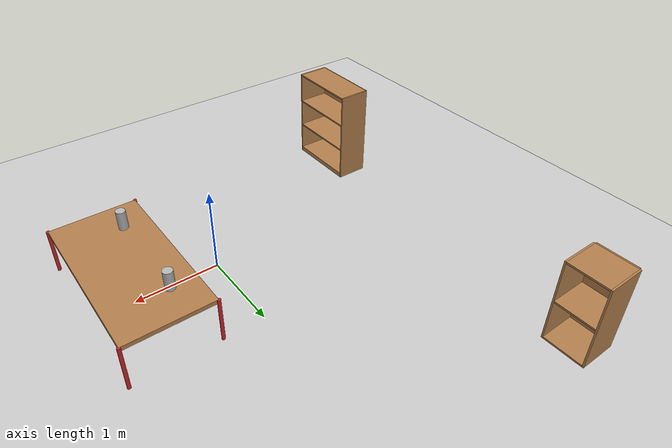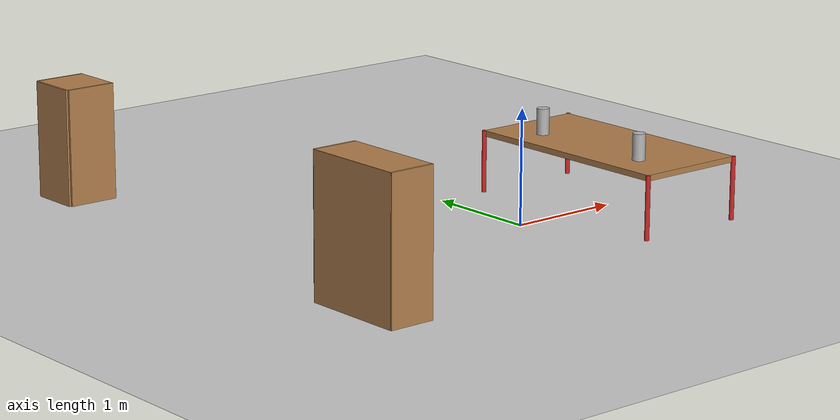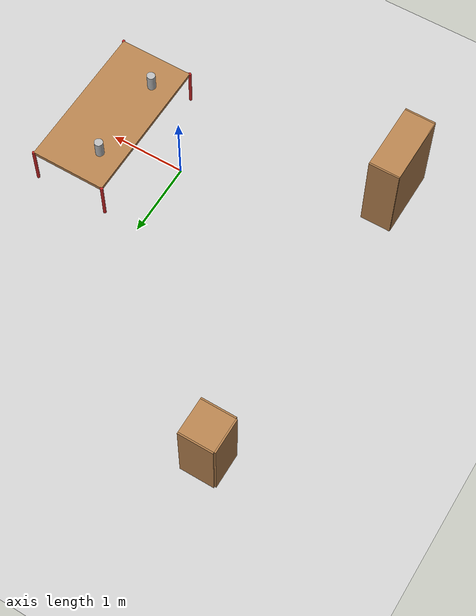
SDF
<sdf version="1.3">
 <world name="default">
  <light name="sun" type="directional">
   <pose>0.000000 0.000000 10.000000 0.000000 0.000000 0.000000</pose>
   <diffuse>0.800000 0.800000 0.800000 1.000000</diffuse>
   <specular>0.100000 0.100000 0.100000 1.000000</specular>
   <attenuation>
    <range>1000.000000</range>
    <constant>0.900000</constant>
    <linear>0.010000</linear>
    <quadratic>0.001000</quadratic>
   </attenuation>
   <direction>-0.500000 0.500000 -1.000000</direction>
  </light>
  <model name="ground_plane">
   <static>1</static>
   <link name="link">
    <collision name="collision">
     <geometry>
      <plane><normal>0.000000 0.000000 1.000000</normal><size>100.000000 100.000000</size></plane>
     </geometry>
     <surface><friction><ode><mu>100.000000</mu><mu2>50.000000</mu2></ode></friction></surface>
    </collision>
    <visual name="visual">
     <cast_shadows>0</cast_shadows>
     <geometry>
      <plane><normal>0.000000 0.000000 1.000000</normal><size>100.000000 100.000000</size></plane>
     </geometry>
     <material>
      <script><uri>file://media/materials/scripts/gazebo.material</uri><name>Gazebo/Grey</name></script>
     </material>
    </visual>
    <velocity_decay><linear>0.000000</linear><angular>0.000000</angular></velocity_decay>
   </link>
  </model>
  <physics type="ode">
   <update_rate>1000.000000</update_rate>
   <gravity>0.000000 0.000000 -9.800000</gravity>
  </physics>
  <scene>
   <ambient>0.200000 0.200000 0.200000 1.000000</ambient>
   <background>0.700000 0.700000 0.700000 1.000000</background>
   <shadows>1</shadows>
  </scene>
  <model name="table_1">
   <link name="table_top_link">
    <inertial>
     <pose>0.980000 0.000000 0.325000 0.000000 0.000000 0.000000</pose>
     <mass>5.000000</mass>
     <inertia>
      <ixx>5.400000</ixx>
      <ixy>0.000000</ixy>
      <ixz>-1.078000</ixz>
      <iyy>6.241600</iyy>
      <iyz>0.000000</iyz>
      <izz>9.881600</izz>
     </inertia>
    </inertial>
    <collision name="table_top_link_geom">
     <pose>0.980000 0.000000 0.525000 0.000000 0.000000 0.000000</pose>
     <geometry><box><size>1.000000 2.000000 0.050000</size></box></geometry>
     <surface>
      <contact><ode><kp>1000000.000000</kp><kd>1.000000</kd></ode></contact>
      <friction><ode><mu>50.000000</mu><mu2>50.000000</mu2></ode></friction>
     </surface>
    </collision>
    <collision name="table_top_link_geom_leg1_link">
     <pose>1.480000 1.000000 0.275000 0.000000 0.000000 0.000000</pose>
     <geometry><cylinder><length>0.550000</length><radius>0.020000</radius></cylinder></geometry>
     <surface>
      <contact><ode><kp>10000000.000000</kp><kd>1.000000</kd></ode></contact>
      <friction><ode><mu>1000.000000</mu><mu2>1000.000000</mu2></ode></friction>
     </surface>
    </collision>
    <collision name="table_top_link_geom_leg2_link">
     <pose>0.480000 1.000000 0.275000 0.000000 0.000000 0.000000</pose>
     <geometry><cylinder><length>0.550000</length><radius>0.020000</radius></cylinder></geometry>
     <surface>
      <contact><ode><kp>10000000.000000</kp><kd>1.000000</kd></ode></contact>
      <friction><ode><mu>1000.000000</mu><mu2>1000.000000</mu2></ode></friction>
     </surface>
    </collision>
    <collision name="table_top_link_geom_leg3_link">
     <pose>1.480000 -1.000000 0.275000 0.000000 0.000000 0.000000</pose>
     <geometry><cylinder><length>0.550000</length><radius>0.020000</radius></cylinder></geometry>
     <surface>
      <contact><ode><kp>10000000.000000</kp><kd>1.000000</kd></ode></contact>
      <friction><ode><mu>1000.000000</mu><mu2>1000.000000</mu2></ode></friction>
     </surface>
    </collision>
    <collision name="table_top_link_geom_leg4_link">
     <pose>0.480000 -1.000000 0.275000 0.000000 0.000000 0.000000</pose>
     <geometry><cylinder><length>0.550000</length><radius>0.020000</radius></cylinder></geometry>
     <surface>
      <contact><ode><kp>10000000.000000</kp><kd>1.000000</kd></ode></contact>
      <friction><ode><mu>1000.000000</mu><mu2>1000.000000</mu2></ode></friction>
     </surface>
    </collision>
    <visual name="table_top_link_visual">
     <pose>0.980000 0.000000 0.525000 0.000000 0.000000 0.000000</pose>
     <geometry><box><size>1.000000 2.000000 0.050000</size></box></geometry>
     <material><script><name>Gazebo/Wood</name><uri>__default__</uri></script></material>
    </visual>
    <visual name="table_top_link_visualleg1_link">
     <pose>1.480000 1.000000 0.275000 0.000000 0.000000 0.000000</pose>
     <geometry><cylinder><length>0.550000</length><radius>0.020000</radius></cylinder></geometry>
     <material><script><name>Gazebo/Red</name><uri>__default__</uri></script></material>
    </visual>
    <visual name="table_top_link_visualleg2_link">
     <pose>0.480000 1.000000 0.275000 0.000000 0.000000 0.000000</pose>
     <geometry><cylinder><length>0.550000</length><radius>0.020000</radius></cylinder></geometry>
     <material><script><name>Gazebo/Red</name><uri>__default__</uri></script></material>
    </visual>
    <visual name="table_top_link_visualleg3_link">
     <pose>1.480000 -1.000000 0.275000 0.000000 0.000000 0.000000</pose>
     <geometry><cylinder><length>0.550000</length><radius>0.020000</radius></cylinder></geometry>
     <material><script><name>Gazebo/Red</name><uri>__default__</uri></script></material>
    </visual>
    <visual name="table_top_link_visualleg4_link">
     <pose>0.480000 -1.000000 0.275000 0.000000 0.000000 0.000000</pose>
     <geometry><cylinder><length>0.550000</length><radius>0.020000</radius></cylinder></geometry>
     <material><script><name>Gazebo/Red</name><uri>__default__</uri></script></material>
    </visual>
    <velocity_decay><linear>0.000000</linear><angular>0.000000</angular></velocity_decay>
    <velocity_decay><linear>0.000000</linear><angular>0.000000</angular></velocity_decay>
    <velocity_decay><linear>0.000000</linear><angular>0.000000</angular></velocity_decay>
    <velocity_decay><linear>0.000000</linear><angular>0.000000</angular></velocity_decay>
    <velocity_decay><linear>0.000000</linear><angular>0.000000</angular></velocity_decay>
    <self_collide>1</self_collide>
   </link>
   <static>1</static>
  </model>
  <model name="beer">
   <link name="link">
    <pose>0.000000 0.000000 0.115000 0.000000 0.000000 0.000000</pose>
    <inertial>
     <mass>0.390000</mass>
     <inertia>
      <ixx>0.000580</ixx>
      <ixy>0.000000</ixy>
      <ixz>0.000000</ixz>
      <iyy>0.000580</iyy>
      <iyz>0.000000</iyz>
      <izz>0.000190</izz>
     </inertia>
    </inertial>
    <collision name="collision">
     <geometry><cylinder><radius>0.055000</radius><length>0.230000</length></cylinder></geometry>
    </collision>
    <visual name="visual">
     <geometry><cylinder><radius>0.055000</radius><length>0.230000</length></cylinder></geometry>
     <material>
      <script>
       <uri>model://beer/materials/scripts</uri>
       <uri>model://beer/materials/textures</uri>
       <name>Beer/Diffuse</name>
      </script>
     </material>
    </visual>
    <velocity_decay><linear>0.000000</linear><angular>0.000000</angular></velocity_decay>
   </link>
   <pose>0.782363 -0.583267 0.550000 0.000000 0.000000 0.000000</pose>
   <static>0</static>
  </model>
  <model name="beer_0">
   <link name="link">
    <pose>0.000000 0.000000 0.115000 0.000000 0.000000 0.000000</pose>
    <inertial>
     <mass>0.390000</mass>
     <inertia>
      <ixx>0.000580</ixx>
      <ixy>0.000000</ixy>
      <ixz>0.000000</ixz>
      <iyy>0.000580</iyy>
      <iyz>0.000000</iyz>
      <izz>0.000190</izz>
     </inertia>
    </inertial>
    <collision name="collision">
     <geometry><cylinder><radius>0.055000</radius><length>0.230000</length></cylinder></geometry>
    </collision>
    <visual name="visual">
     <geometry><cylinder><radius>0.055000</radius><length>0.230000</length></cylinder></geometry>
     <material>
      <script>
       <uri>model://beer/materials/scripts</uri>
       <uri>model://beer/materials/textures</uri>
       <name>Beer/Diffuse</name>
      </script>
     </material>
    </visual>
    <velocity_decay><linear>0.000000</linear><angular>0.000000</angular></velocity_decay>
   </link>
   <pose>0.782363 0.583267 0.550000 0.000000 0.000000 0.000000</pose>
   <static>0</static>
  </model>
  <model name="bookshelf">
   <static>1</static>
   <link name="link">
    <inertial><mass>1.000000</mass></inertial>
    <collision name="back">
     <pose>0.000000 0.005000 0.600000 0.000000 0.000000 0.000000</pose>
     <geometry><box><size>0.900000 0.010000 1.200000</size></box></geometry>
    </collision>
    <visual name="visual1">
     <pose>0.000000 0.005000 0.600000 0.000000 0.000000 0.000000</pose>
     <geometry><box><size>0.900000 0.010000 1.200000</size></box></geometry>
     <material>
      <script><uri>file://media/materials/scripts/gazebo.material</uri><name>Gazebo/Wood</name></script>
     </material>
    </visual>
    <collision name="left_side">
     <pose>0.450000 -0.195000 0.600000 0.000000 0.000000 0.000000</pose>
     <geometry><box><size>0.020000 0.400000 1.200000</size></box></geometry>
    </collision>
    <visual name="visual2">
     <pose>0.450000 -0.195000 0.600000 0.000000 0.000000 0.000000</pose>
     <geometry><box><size>0.020000 0.400000 1.200000</size></box></geometry>
     <material>
      <script><uri>file://media/materials/scripts/gazebo.material</uri><name>Gazebo/Wood</name></script>
     </material>
    </visual>
    <collision name="right_side">
     <pose>-0.450000 -0.195000 0.600000 0.000000 0.000000 0.000000</pose>
     <geometry><box><size>0.020000 0.400000 1.200000</size></box></geometry>
    </collision>
    <visual name="visual3">
     <pose>-0.450000 -0.195000 0.600000 0.000000 0.000000 0.000000</pose>
     <geometry><box><size>0.020000 0.400000 1.200000</size></box></geometry>
     <material>
      <script><uri>file://media/materials/scripts/gazebo.material</uri><name>Gazebo/Wood</name></script>
     </material>
    </visual>
    <collision name="bottom">
     <pose>0.000000 -0.195000 0.030000 0.000000 0.000000 0.000000</pose>
     <geometry><box><size>0.880000 0.400000 0.060000</size></box></geometry>
    </collision>
    <visual name="visual4">
     <pose>0.000000 -0.195000 0.030000 0.000000 0.000000 0.000000</pose>
     <geometry><box><size>0.880000 0.400000 0.060000</size></box></geometry>
     <material>
      <script><uri>file://media/materials/scripts/gazebo.material</uri><name>Gazebo/Wood</name></script>
     </material>
    </visual>
    <collision name="top">
     <pose>0.000000 -0.195000 1.190000 0.000000 0.000000 0.000000</pose>
     <geometry><box><size>0.880000 0.400000 0.020000</size></box></geometry>
    </collision>
    <visual name="visual5">
     <pose>0.000000 -0.195000 1.190000 0.000000 0.000000 0.000000</pose>
     <geometry><box><size>0.880000 0.400000 0.020000</size></box></geometry>
     <material>
      <script><uri>file://media/materials/scripts/gazebo.material</uri><name>Gazebo/Wood</name></script>
     </material>
    </visual>
    <collision name="low_shelf">
     <pose>0.000000 -0.195000 0.430000 0.000000 0.000000 0.000000</pose>
     <geometry><box><size>0.880000 0.400000 0.020000</size></box></geometry>
    </collision>
    <visual name="visual6">
     <pose>0.000000 -0.195000 0.430000 0.000000 0.000000 0.000000</pose>
     <geometry><box><size>0.880000 0.400000 0.020000</size></box></geometry>
     <material>
      <script><uri>file://media/materials/scripts/gazebo.material</uri><name>Gazebo/Wood</name></script>
     </material>
    </visual>
    <collision name="high_shelf">
     <pose>0.000000 -0.195000 0.800000 0.000000 0.000000 0.000000</pose>
     <geometry><box><size>0.880000 0.400000 0.020000</size></box></geometry>
    </collision>
    <visual name="visual7">
     <pose>0.000000 -0.195000 0.800000 0.000000 0.000000 0.000000</pose>
     <geometry><box><size>0.880000 0.400000 0.020000</size></box></geometry>
     <material>
      <script><uri>file://media/materials/scripts/gazebo.material</uri><name>Gazebo/Wood</name></script>
     </material>
    </visual>
    <velocity_decay><linear>0.000000</linear><angular>0.000000</angular></velocity_decay>
   </link>
   <pose>-2.652325 -1.045681 0.000000 0.000000 0.000000 1.570000</pose>
  </model>
  <model name="cabinet">
   <static>1</static>
   <link name="cabinet_bottom_plate">
    <inertial>
     <pose>0.000000 0.000000 -1.000000 0.000000 0.000000 0.000000</pose>
     <inertia>
      <ixx>2.050000</ixx>
      <ixy>0.000000</ixy>
      <ixz>0.000000</ixz>
      <iyy>2.050000</iyy>
      <iyz>0.000000</iyz>
      <izz>2.050000</izz>
     </inertia>
     <mass>25.000000</mass>
    </inertial>
    <collision name="cabinet_bottom_plate_geom">
     <pose>0.000000 0.000000 0.010000 0.000000 0.000000 0.000000</pose>
     <geometry><box><size>0.450000 0.450000 0.020000</size></box></geometry>
    </collision>
    <visual name="cabinet_bottom_plate_geom_visual">
     <pose>0.000000 0.000000 0.010000 0.000000 0.000000 0.000000</pose>
     <geometry><box><size>0.450000 0.450000 0.020000</size></box></geometry>
     <material>
      <script><uri>file://media/materials/scripts/gazebo.material</uri><name>Gazebo/Wood</name></script>
     </material>
    </visual>
    <collision name="cabinet_bottom_plate_geom_cabinet_back_plate">
     <pose>0.235000 0.000000 0.510000 0.000000 0.000000 0.000000</pose>
     <geometry><box><size>0.020000 0.450000 1.020000</size></box></geometry>
    </collision>
    <visual name="cabinet_bottom_plate_geom_cabinet_back_plate_visual">
     <pose>0.235000 0.000000 0.510000 0.000000 0.000000 0.000000</pose>
     <geometry><box><size>0.020000 0.450000 1.020000</size></box></geometry>
     <material>
      <script><uri>file://media/materials/scripts/gazebo.material</uri><name>Gazebo/Wood</name></script>
     </material>
    </visual>
    <collision name="cabinet_bottom_plate_geom_cabinet_left_plate">
     <pose>0.000000 0.235000 0.510000 0.000000 0.000000 0.000000</pose>
     <geometry><box><size>0.450000 0.020000 1.020000</size></box></geometry>
    </collision>
    <visual name="cabinet_bottom_plate_geom_cabinet_left_plate_visual">
     <pose>0.000000 0.235000 0.510000 0.000000 0.000000 0.000000</pose>
     <geometry><box><size>0.450000 0.020000 1.020000</size></box></geometry>
     <material>
      <script><uri>file://media/materials/scripts/gazebo.material</uri><name>Gazebo/Wood</name></script>
     </material>
    </visual>
    <collision name="cabinet_bottom_plate_geom_cabinet_middle_plate">
     <pose>0.000000 0.000000 0.510000 0.000000 0.000000 0.000000</pose>
     <geometry><box><size>0.450000 0.450000 0.020000</size></box></geometry>
    </collision>
    <visual name="cabinet_bottom_plate_geom_cabinet_middle_plate_visual">
     <pose>0.000000 0.000000 0.510000 0.000000 0.000000 0.000000</pose>
     <geometry><box><size>0.450000 0.450000 0.020000</size></box></geometry>
     <material>
      <script><uri>file://media/materials/scripts/gazebo.material</uri><name>Gazebo/Wood</name></script>
     </material>
    </visual>
    <collision name="cabinet_bottom_plate_geom_cabinet_right_plate">
     <pose>0.000000 -0.235000 0.510000 0.000000 0.000000 0.000000</pose>
     <geometry><box><size>0.450000 0.020000 1.020000</size></box></geometry>
    </collision>
    <visual name="cabinet_bottom_plate_geom_cabinet_right_plate_visual">
     <pose>0.000000 -0.235000 0.510000 0.000000 0.000000 0.000000</pose>
     <geometry><box><size>0.450000 0.020000 1.020000</size></box></geometry>
     <material>
      <script><uri>file://media/materials/scripts/gazebo.material</uri><name>Gazebo/Wood</name></script>
     </material>
    </visual>
    <collision name="cabinet_bottom_plate_geom_cabinet_top_plate">
     <pose>0.000000 0.000000 1.010000 0.000000 0.000000 0.000000</pose>
     <geometry><box><size>0.450000 0.450000 0.020000</size></box></geometry>
    </collision>
    <visual name="cabinet_bottom_plate_geom_cabinet_top_plate_visual">
     <pose>0.000000 0.000000 1.010000 0.000000 0.000000 0.000000</pose>
     <geometry><box><size>0.450000 0.450000 0.020000</size></box></geometry>
     <material>
      <script><uri>file://media/materials/scripts/gazebo.material</uri><name>Gazebo/Wood</name></script>
     </material>
    </visual>
    <velocity_decay><linear>0.000000</linear><angular>0.000000</angular></velocity_decay>
   </link>
   <pose>-2.334273 3.114444 0.000000 0.000000 0.000000 -3.14</pose>
  </model>
 </world>
</sdf>
